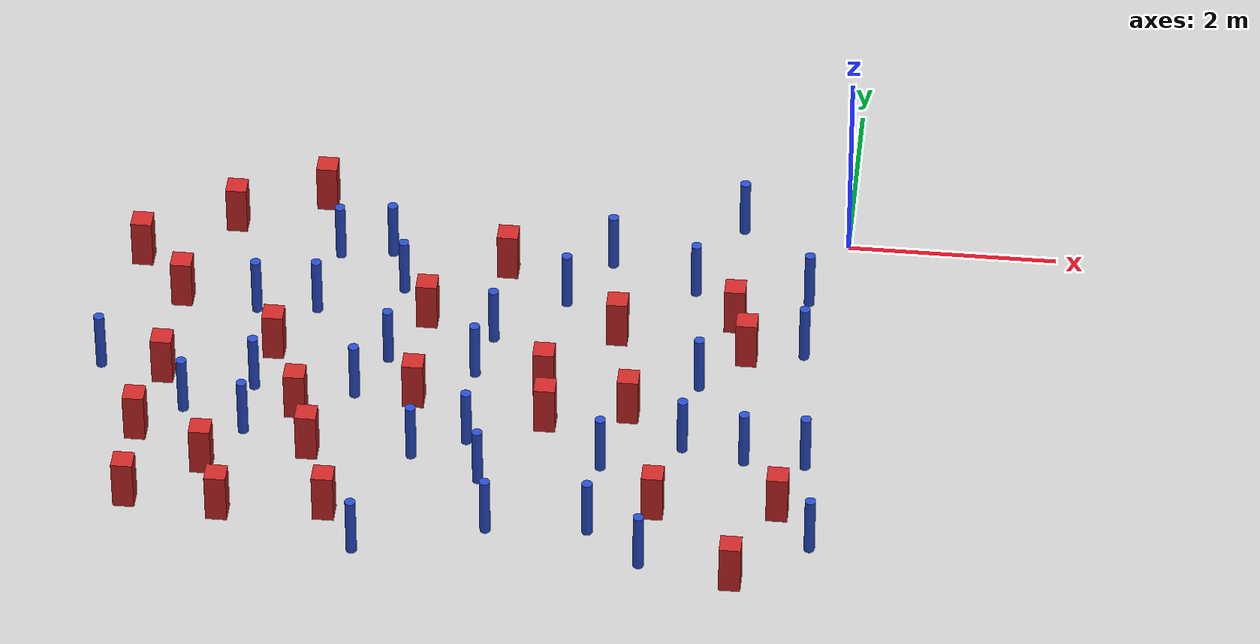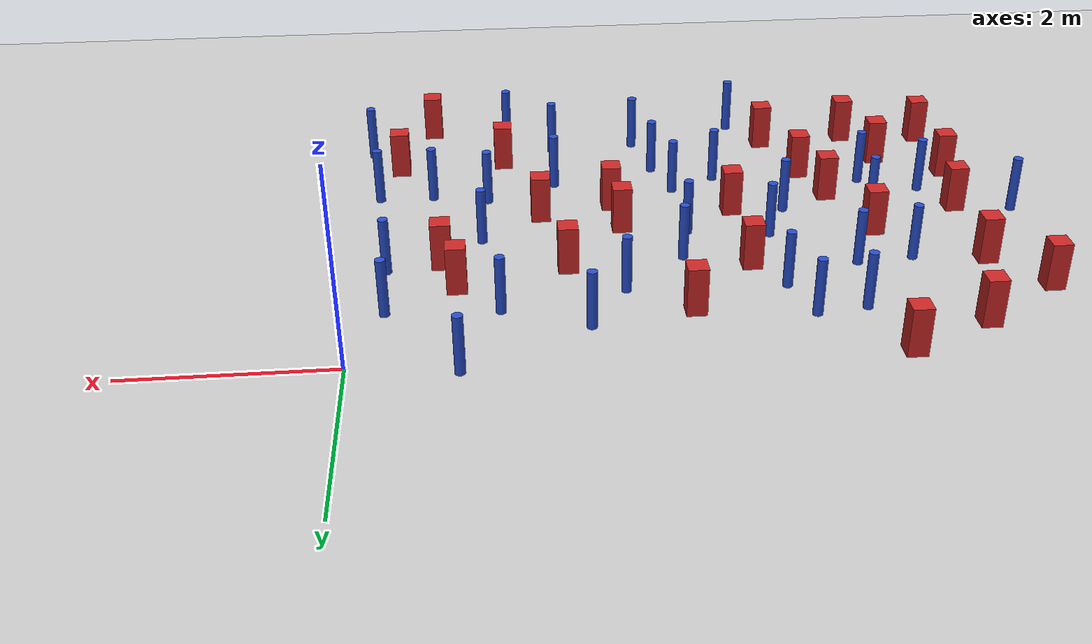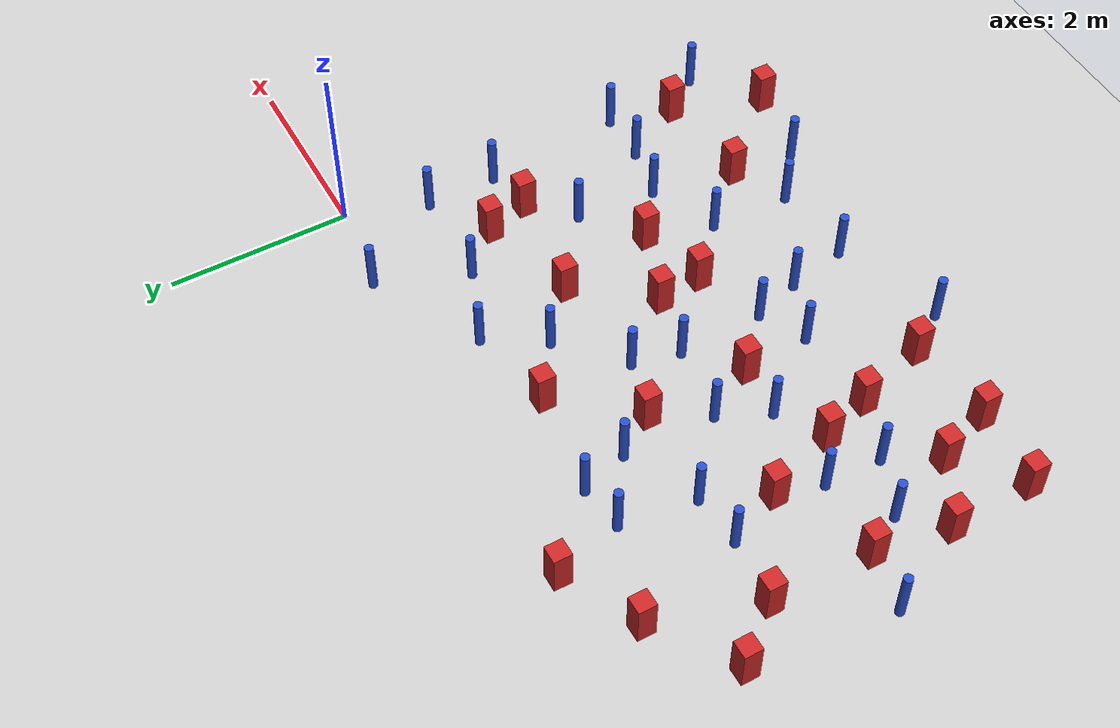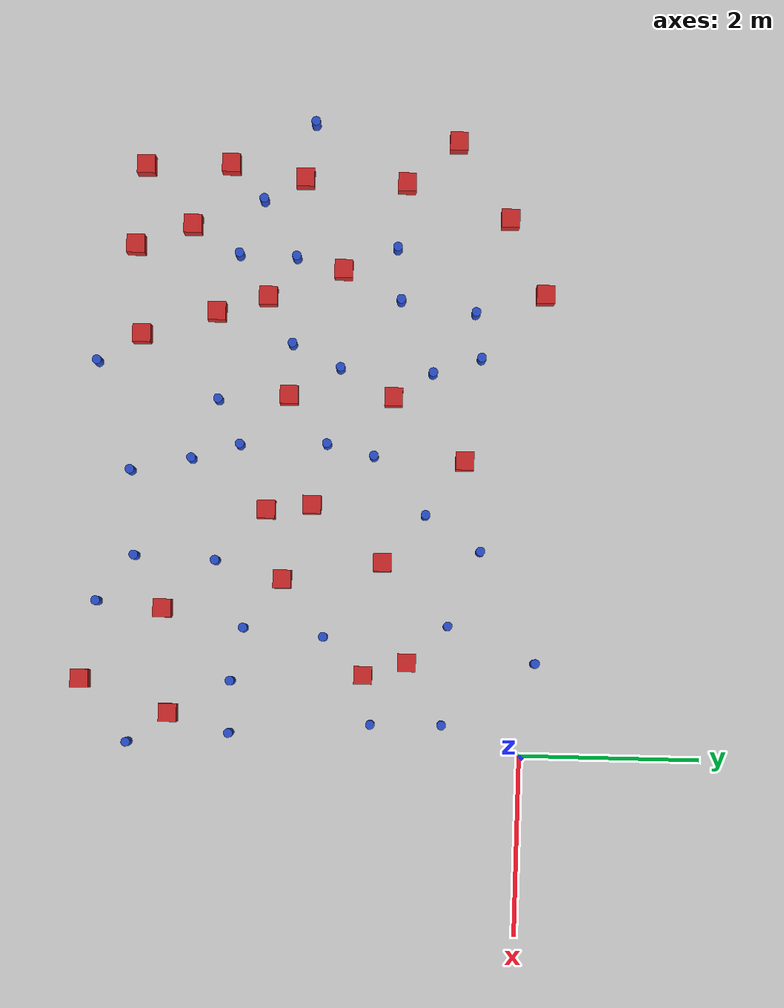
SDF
<sdf version="1.6">
 <world name="default">
  <model name="ground_plane">
   <static>1</static>
   <link name="link">
    <collision name="collision">
     <geometry><plane><normal>0 0 1</normal><size>100 100</size></plane></geometry>
     <surface><friction><ode><mu>100</mu><mu2>50</mu2></ode></friction></surface>
    </collision>
    <visual name="visual">
     <cast_shadows>0</cast_shadows>
     <geometry><plane><normal>0 0 1</normal><size>100 100</size></plane></geometry>
     <material>
      <ambient>1.0 1.0 1.0 1.0</ambient>
      <diffuse>0.8 0.8 0.8 1.0</diffuse>
      <specular>0.01 0.01 0.01 1.000000</specular>
     </material>
    </visual>
   </link>
  </model>
  <model name="square_post_obstacle1">
   <static>true</static>
   <pose>-5.09552798012 0.169614050784 8.22691968438e-08 7.2212513382e-06 -7.54495500217e-07 2.29674213826e-05</pose>
   <link name="link">
    <pose>0 0 0.25 0 -0 0</pose>
    <inertial>
     <mass>100</mass>
     <inertia>
      <ixx>0.166667</ixx>
      <ixy>0</ixy>
      <ixz>0</ixz>
      <iyy>0.166667</iyy>
      <iyz>0</iyz>
      <izz>0.166667</izz>
     </inertia>
    </inertial>
    <collision name="collision"><geometry><box><size>.2 .2 .5</size></box></geometry></collision>
    <visual name="visual">
     <geometry><box><size>.2 .2 .5</size></box></geometry>
     <material>
      <script><name>Gazebo/Red</name><uri>file://media/materials/scripts/gazebo.material</uri></script>
     </material>
    </visual>
   </link>
  </model>
  <model name="square_post_obstacle5">
   <static>true</static>
   <pose>-0.739914075484 -4.86374876013 8.22691968438e-08 7.2212513382e-06 -7.54495500217e-07 2.29674213826e-05</pose>
   <link name="link">
    <pose>0 0 0.25 0 -0 0</pose>
    <inertial>
     <mass>100</mass>
     <inertia>
      <ixx>0.166667</ixx>
      <ixy>0</ixy>
      <ixz>0</ixz>
      <iyy>0.166667</iyy>
      <iyz>0</iyz>
      <izz>0.166667</izz>
     </inertia>
    </inertial>
    <collision name="collision"><geometry><box><size>.2 .2 .5</size></box></geometry></collision>
    <visual name="visual">
     <geometry><box><size>.2 .2 .5</size></box></geometry>
     <material>
      <script><name>Gazebo/Red</name><uri>file://media/materials/scripts/gazebo.material</uri></script>
     </material>
    </visual>
   </link>
  </model>
  <model name="square_post_obstacle14">
   <static>true</static>
   <pose>-2.71619464707 -2.35196584994 8.22691968438e-08 7.2212513382e-06 -7.54495500217e-07 2.29674213826e-05</pose>
   <link name="link">
    <pose>0 0 0.25 0 -0 0</pose>
    <inertial>
     <mass>100</mass>
     <inertia>
      <ixx>0.166667</ixx>
      <ixy>0</ixy>
      <ixz>0</ixz>
      <iyy>0.166667</iyy>
      <iyz>0</iyz>
      <izz>0.166667</izz>
     </inertia>
    </inertial>
    <collision name="collision"><geometry><box><size>.2 .2 .5</size></box></geometry></collision>
    <visual name="visual">
     <geometry><box><size>.2 .2 .5</size></box></geometry>
     <material>
      <script><name>Gazebo/Red</name><uri>file://media/materials/scripts/gazebo.material</uri></script>
     </material>
    </visual>
   </link>
  </model>
  <model name="pole_obstacle10">
   <static>true</static>
   <pose>-1.26184989518 -2.19216682164 2.88873142074e-08 -9.90536689791e-09 4.6021994899e-07 -1.20965994959e-07</pose>
   <link name="link">
    <pose>0 0 0.3 0 -0 0</pose>
    <inertial>
     <mass>1</mass>
     <inertia><ixx>0.145833</ixx><ixy>0</ixy><ixz>0</ixz><iyy>0.145833</iyy><iyz>0</iyz><izz>0.125</izz></inertia>
    </inertial>
    <collision name="collision">
     <geometry><cylinder><radius>0.05</radius><length>.6</length></cylinder></geometry>
    </collision>
    <visual name="visual">
     <geometry><cylinder><radius>0.05</radius><length>.6</length></cylinder></geometry>
     <material>
      <script><name>Gazebo/Blue</name><uri>file://media/materials/scripts/gazebo.material</uri></script>
     </material>
    </visual>
   </link>
  </model>
  <model name="square_post_obstacle21">
   <static>true</static>
   <pose>-4.8261092977 -3.45431383046 8.22691968438e-08 7.2212513382e-06 -7.54495500217e-07 2.29674213826e-05</pose>
   <link name="link">
    <pose>0 0 0.25 0 -0 0</pose>
    <inertial>
     <mass>100</mass>
     <inertia>
      <ixx>0.166667</ixx>
      <ixy>0</ixy>
      <ixz>0</ixz>
      <iyy>0.166667</iyy>
      <iyz>0</iyz>
      <izz>0.166667</izz>
     </inertia>
    </inertial>
    <collision name="collision"><geometry><box><size>.2 .2 .5</size></box></geometry></collision>
    <visual name="visual">
     <geometry><box><size>.2 .2 .5</size></box></geometry>
     <material>
      <script><name>Gazebo/Red</name><uri>file://media/materials/scripts/gazebo.material</uri></script>
     </material>
    </visual>
   </link>
  </model>
  <model name="pole_obstacle17">
   <static>true</static>
   <pose>-2.62959651649 -1.09778085469 2.88873142074e-08 -9.90536689395e-09 4.60219949e-07 -1.20965994953e-07</pose>
   <link name="link">
    <pose>0 0 0.3 0 -0 0</pose>
    <inertial>
     <mass>1</mass>
     <inertia><ixx>0.145833</ixx><ixy>0</ixy><ixz>0</ixz><iyy>0.145833</iyy><iyz>0</iyz><izz>0.125</izz></inertia>
    </inertial>
    <collision name="collision">
     <geometry><cylinder><radius>0.05</radius><length>.6</length></cylinder></geometry>
    </collision>
    <visual name="visual">
     <geometry><cylinder><radius>0.05</radius><length>.6</length></cylinder></geometry>
     <material>
      <script><name>Gazebo/Blue</name><uri>file://media/materials/scripts/gazebo.material</uri></script>
     </material>
    </visual>
   </link>
  </model>
  <model name="square_post_obstacle26">
   <static>true</static>
   <pose>-4.56124194803 -4.27651367608 8.22691968438e-08 7.2212513382e-06 -7.54495500217e-07 2.29674213826e-05</pose>
   <link name="link">
    <pose>0 0 0.25 0 -0 0</pose>
    <inertial>
     <mass>100</mass>
     <inertia>
      <ixx>0.166667</ixx>
      <ixy>0</ixy>
      <ixz>0</ixz>
      <iyy>0.166667</iyy>
      <iyz>0</iyz>
      <izz>0.166667</izz>
     </inertia>
    </inertial>
    <collision name="collision"><geometry><box><size>.2 .2 .5</size></box></geometry></collision>
    <visual name="visual">
     <geometry><box><size>.2 .2 .5</size></box></geometry>
     <material>
      <script><name>Gazebo/Red</name><uri>file://media/materials/scripts/gazebo.material</uri></script>
     </material>
    </visual>
   </link>
  </model>
  <model name="square_post_obstacle27">
   <static>true</static>
   <pose>-5.32435496994 -2.06732113186 8.22691968438e-08 7.2212513382e-06 -7.54495500217e-07 2.29674213826e-05</pose>
   <link name="link">
    <pose>0 0 0.25 0 -0 0</pose>
    <inertial>
     <mass>100</mass>
     <inertia>
      <ixx>0.166667</ixx>
      <ixy>0</ixy>
      <ixz>0</ixz>
      <iyy>0.166667</iyy>
      <iyz>0</iyz>
      <izz>0.166667</izz>
     </inertia>
    </inertial>
    <collision name="collision"><geometry><box><size>.2 .2 .5</size></box></geometry></collision>
    <visual name="visual">
     <geometry><box><size>.2 .2 .5</size></box></geometry>
     <material>
      <script><name>Gazebo/Red</name><uri>file://media/materials/scripts/gazebo.material</uri></script>
     </material>
    </visual>
   </link>
  </model>
  <model name="square_post_obstacle33">
   <static>true</static>
   <pose>-5.00915330419 -2.89200436723 8.22691968438e-08 7.2212513382e-06 -7.54495500217e-07 2.29674213826e-05</pose>
   <link name="link">
    <pose>0 0 0.25 0 -0 0</pose>
    <inertial>
     <mass>100</mass>
     <inertia>
      <ixx>0.166667</ixx>
      <ixy>0</ixy>
      <ixz>0</ixz>
      <iyy>0.166667</iyy>
      <iyz>0</iyz>
      <izz>0.166667</izz>
     </inertia>
    </inertial>
    <collision name="collision"><geometry><box><size>.2 .2 .5</size></box></geometry></collision>
    <visual name="visual">
     <geometry><box><size>.2 .2 .5</size></box></geometry>
     <material>
      <script><name>Gazebo/Red</name><uri>file://media/materials/scripts/gazebo.material</uri></script>
     </material>
    </visual>
   </link>
  </model>
  <model name="square_post_obstacle43">
   <static>true</static>
   <pose>-3.23792067343 -0.678692630526 8.22691968438e-08 7.2212513382e-06 -7.54495500217e-07 2.29674213826e-05</pose>
   <link name="link">
    <pose>0 0 0.25 0 -0 0</pose>
    <inertial>
     <mass>100</mass>
     <inertia>
      <ixx>0.166667</ixx>
      <ixy>0</ixy>
      <ixz>0</ixz>
      <iyy>0.166667</iyy>
      <iyz>0</iyz>
      <izz>0.166667</izz>
     </inertia>
    </inertial>
    <collision name="collision"><geometry><box><size>.2 .2 .5</size></box></geometry></collision>
    <visual name="visual">
     <geometry><box><size>.2 .2 .5</size></box></geometry>
     <material>
      <script><name>Gazebo/Red</name><uri>file://media/materials/scripts/gazebo.material</uri></script>
     </material>
    </visual>
   </link>
  </model>
  <model name="square_post_obstacle45">
   <static>true</static>
   <pose>-6.42636664335 -4.27368745929 8.22691968438e-08 7.22125133819e-06 -7.54495500217e-07 2.29674213826e-05</pose>
   <link name="link">
    <pose>0 0 0.25 0 -0 0</pose>
    <inertial>
     <mass>100</mass>
     <inertia>
      <ixx>0.166667</ixx>
      <ixy>0</ixy>
      <ixz>0</ixz>
      <iyy>0.166667</iyy>
      <iyz>0</iyz>
      <izz>0.166667</izz>
     </inertia>
    </inertial>
    <collision name="collision"><geometry><box><size>.2 .2 .5</size></box></geometry></collision>
    <visual name="visual">
     <geometry><box><size>.2 .2 .5</size></box></geometry>
     <material>
      <script><name>Gazebo/Red</name><uri>file://media/materials/scripts/gazebo.material</uri></script>
     </material>
    </visual>
   </link>
  </model>
  <model name="square_post_obstacle48">
   <static>true</static>
   <pose>-1.88824573846 -2.66054621003 8.22691968438e-08 7.2212513382e-06 -7.54495500217e-07 2.29674213826e-05</pose>
   <link name="link">
    <pose>0 0 0.25 0 -0 0</pose>
    <inertial>
     <mass>100</mass>
     <inertia>
      <ixx>0.166667</ixx>
      <ixy>0</ixy>
      <ixz>0</ixz>
      <iyy>0.166667</iyy>
      <iyz>0</iyz>
      <izz>0.166667</izz>
     </inertia>
    </inertial>
    <collision name="collision"><geometry><box><size>.2 .2 .5</size></box></geometry></collision>
    <visual name="visual">
     <geometry><box><size>.2 .2 .5</size></box></geometry>
     <material>
      <script><name>Gazebo/Red</name><uri>file://media/materials/scripts/gazebo.material</uri></script>
     </material>
    </visual>
   </link>
  </model>
  <model name="square_post_obstacle52">
   <static>true</static>
   <pose>-5.5453873152 -4.36742993453 8.22691968438e-08 7.22125133819e-06 -7.54495500217e-07 2.29674213826e-05</pose>
   <link name="link">
    <pose>0 0 0.25 0 -0 0</pose>
    <inertial>
     <mass>100</mass>
     <inertia>
      <ixx>0.166667</ixx>
      <ixy>0</ixy>
      <ixz>0</ixz>
      <iyy>0.166667</iyy>
      <iyz>0</iyz>
      <izz>0.166667</izz>
     </inertia>
    </inertial>
    <collision name="collision"><geometry><box><size>.2 .2 .5</size></box></geometry></collision>
    <visual name="visual">
     <geometry><box><size>.2 .2 .5</size></box></geometry>
     <material>
      <script><name>Gazebo/Red</name><uri>file://media/materials/scripts/gazebo.material</uri></script>
     </material>
    </visual>
   </link>
  </model>
  <model name="pole_obstacle52">
   <static>true</static>
   <pose>-6.07132431336 -2.9605820387 2.88873142074e-08 -9.90536690245e-09 4.6021994898e-07 -1.20965994966e-07</pose>
   <link name="link">
    <pose>0 0 0.3 0 -0 0</pose>
    <inertial>
     <mass>1</mass>
     <inertia><ixx>0.145833</ixx><ixy>0</ixy><ixz>0</ixz><iyy>0.145833</iyy><iyz>0</iyz><izz>0.125</izz></inertia>
    </inertial>
    <collision name="collision">
     <geometry><cylinder><radius>0.05</radius><length>.6</length></cylinder></geometry>
    </collision>
    <visual name="visual">
     <geometry><cylinder><radius>0.05</radius><length>.6</length></cylinder></geometry>
     <material>
      <script><name>Gazebo/Blue</name><uri>file://media/materials/scripts/gazebo.material</uri></script>
     </material>
    </visual>
   </link>
  </model>
  <model name="pole_obstacle60">
   <static>true</static>
   <pose>-1.41136649371 -0.82225430417 2.88873142074e-08 -9.90536689692e-09 4.60219948993e-07 -1.20965994958e-07</pose>
   <link name="link">
    <pose>0 0 0.3 0 -0 0</pose>
    <inertial>
     <mass>1</mass>
     <inertia><ixx>0.145833</ixx><ixy>0</ixy><ixz>0</ixz><iyy>0.145833</iyy><iyz>0</iyz><izz>0.125</izz></inertia>
    </inertial>
    <collision name="collision">
     <geometry><cylinder><radius>0.05</radius><length>.6</length></cylinder></geometry>
    </collision>
    <visual name="visual">
     <geometry><cylinder><radius>0.05</radius><length>.6</length></cylinder></geometry>
     <material>
      <script><name>Gazebo/Blue</name><uri>file://media/materials/scripts/gazebo.material</uri></script>
     </material>
    </visual>
   </link>
  </model>
  <model name="pole_obstacle66">
   <static>true</static>
   <pose>-4.24623921269 -4.75539590558 2.88873142074e-08 -9.90536690842e-09 4.60219948965e-07 -1.20965994976e-07</pose>
   <link name="link">
    <pose>0 0 0.3 0 -0 0</pose>
    <inertial>
     <mass>1</mass>
     <inertia><ixx>0.145833</ixx><ixy>0</ixy><ixz>0</ixz><iyy>0.145833</iyy><iyz>0</iyz><izz>0.125</izz></inertia>
    </inertial>
    <collision name="collision">
     <geometry><cylinder><radius>0.05</radius><length>.6</length></cylinder></geometry>
    </collision>
    <visual name="visual">
     <geometry><cylinder><radius>0.05</radius><length>.6</length></cylinder></geometry>
     <material>
      <script><name>Gazebo/Blue</name><uri>file://media/materials/scripts/gazebo.material</uri></script>
     </material>
    </visual>
   </link>
  </model>
  <model name="square_post_obstacle70">
   <static>true</static>
   <pose>-6.29868401032 -1.38949057265 8.22691968438e-08 7.2212513382e-06 -7.54495500217e-07 2.29674213826e-05</pose>
   <link name="link">
    <pose>0 0 0.25 0 -0 0</pose>
    <inertial>
     <mass>100</mass>
     <inertia>
      <ixx>0.166667</ixx>
      <ixy>0</ixy>
      <ixz>0</ixz>
      <iyy>0.166667</iyy>
      <iyz>0</iyz>
      <izz>0.166667</izz>
     </inertia>
    </inertial>
    <collision name="collision"><geometry><box><size>.2 .2 .5</size></box></geometry></collision>
    <visual name="visual">
     <geometry><box><size>.2 .2 .5</size></box></geometry>
     <material>
      <script><name>Gazebo/Red</name><uri>file://media/materials/scripts/gazebo.material</uri></script>
     </material>
    </visual>
   </link>
  </model>
  <model name="pole_obstacle67">
   <static>true</static>
   <pose>-3.26856803913 -1.68205100615 2.88873142074e-08 -9.90536689395e-09 4.60219949e-07 -1.20965994953e-07</pose>
   <link name="link">
    <pose>0 0 0.3 0 -0 0</pose>
    <inertial>
     <mass>1</mass>
     <inertia><ixx>0.145833</ixx><ixy>0</ixy><ixz>0</ixz><iyy>0.145833</iyy><iyz>0</iyz><izz>0.125</izz></inertia>
    </inertial>
    <collision name="collision">
     <geometry><cylinder><radius>0.05</radius><length>.6</length></cylinder></geometry>
    </collision>
    <visual name="visual">
     <geometry><cylinder><radius>0.05</radius><length>.6</length></cylinder></geometry>
     <material>
      <script><name>Gazebo/Blue</name><uri>file://media/materials/scripts/gazebo.material</uri></script>
     </material>
    </visual>
   </link>
  </model>
  <model name="pole_obstacle83">
   <static>true</static>
   <pose>-1.02284198662 0.147478601178 2.88873142074e-08 -9.90536690066e-09 4.60219948984e-07 -1.20965994963e-07</pose>
   <link name="link">
    <pose>0 0 0.3 0 -0 0</pose>
    <inertial>
     <mass>1</mass>
     <inertia><ixx>0.145833</ixx><ixy>0</ixy><ixz>0</ixz><iyy>0.145833</iyy><iyz>0</iyz><izz>0.125</izz></inertia>
    </inertial>
    <collision name="collision">
     <geometry><cylinder><radius>0.05</radius><length>.6</length></cylinder></geometry>
    </collision>
    <visual name="visual">
     <geometry><cylinder><radius>0.05</radius><length>.6</length></cylinder></geometry>
     <material>
      <script><name>Gazebo/Blue</name><uri>file://media/materials/scripts/gazebo.material</uri></script>
     </material>
    </visual>
   </link>
  </model>
  <model name="square_post_obstacle80">
   <static>true</static>
   <pose>-3.92179624631 -2.63487576427 8.22691968438e-08 7.2212513382e-06 -7.54495500217e-07 2.29674213826e-05</pose>
   <link name="link">
    <pose>0 0 0.25 0 -0 0</pose>
    <inertial>
     <mass>100</mass>
     <inertia>
      <ixx>0.166667</ixx>
      <ixy>0</ixy>
      <ixz>0</ixz>
      <iyy>0.166667</iyy>
      <iyz>0</iyz>
      <izz>0.166667</izz>
     </inertia>
    </inertial>
    <collision name="collision"><geometry><box><size>.2 .2 .5</size></box></geometry></collision>
    <visual name="visual">
     <geometry><box><size>.2 .2 .5</size></box></geometry>
     <material>
      <script><name>Gazebo/Red</name><uri>file://media/materials/scripts/gazebo.material</uri></script>
     </material>
    </visual>
   </link>
  </model>
  <model name="pole_obstacle89">
   <static>true</static>
   <pose>-5.46524443694 -3.21765596789 2.88873142074e-08 -9.90536690245e-09 4.6021994898e-07 -1.20965994966e-07</pose>
   <link name="link">
    <pose>0 0 0.3 0 -0 0</pose>
    <inertial>
     <mass>1</mass>
     <inertia><ixx>0.145833</ixx><ixy>0</ixy><ixz>0</ixz><iyy>0.145833</iyy><iyz>0</iyz><izz>0.125</izz></inertia>
    </inertial>
    <collision name="collision">
     <geometry><cylinder><radius>0.05</radius><length>.6</length></cylinder></geometry>
    </collision>
    <visual name="visual">
     <geometry><cylinder><radius>0.05</radius><length>.6</length></cylinder></geometry>
     <material>
      <script><name>Gazebo/Blue</name><uri>file://media/materials/scripts/gazebo.material</uri></script>
     </material>
    </visual>
   </link>
  </model>
  <model name="pole_obstacle90">
   <static>true</static>
   <pose>-1.59982268177 -4.70130562136 2.88873142074e-08 -9.90536689852e-09 4.60219948989e-07 -1.2096599496e-07</pose>
   <link name="link">
    <pose>0 0 0.3 0 -0 0</pose>
    <inertial>
     <mass>1</mass>
     <inertia><ixx>0.145833</ixx><ixy>0</ixy><ixz>0</ixz><iyy>0.145833</iyy><iyz>0</iyz><izz>0.125</izz></inertia>
    </inertial>
    <collision name="collision">
     <geometry><cylinder><radius>0.05</radius><length>.6</length></cylinder></geometry>
    </collision>
    <visual name="visual">
     <geometry><cylinder><radius>0.05</radius><length>.6</length></cylinder></geometry>
     <material>
      <script><name>Gazebo/Blue</name><uri>file://media/materials/scripts/gazebo.material</uri></script>
     </material>
    </visual>
   </link>
  </model>
  <model name="pole_obstacle94">
   <static>true</static>
   <pose>-0.31929968398 -0.864983389127 2.88873142074e-08 -9.9053668986e-09 4.60219948989e-07 -1.20965994961e-07</pose>
   <link name="link">
    <pose>0 0 0.3 0 -0 0</pose>
    <inertial>
     <mass>1</mass>
     <inertia><ixx>0.145833</ixx><ixy>0</ixy><ixz>0</ixz><iyy>0.145833</iyy><iyz>0</iyz><izz>0.125</izz></inertia>
    </inertial>
    <collision name="collision">
     <geometry><cylinder><radius>0.05</radius><length>.6</length></cylinder></geometry>
    </collision>
    <visual name="visual">
     <geometry><cylinder><radius>0.05</radius><length>.6</length></cylinder></geometry>
     <material>
      <script><name>Gazebo/Blue</name><uri>file://media/materials/scripts/gazebo.material</uri></script>
     </material>
    </visual>
   </link>
  </model>
  <model name="pole_obstacle98">
   <static>true</static>
   <pose>-0.054227129962 -4.32937963711 2.88873142074e-08 -9.90536689643e-09 4.60219948994e-07 -1.20965994959e-07</pose>
   <link name="link">
    <pose>0 0 0.3 0 -0 0</pose>
    <inertial>
     <mass>1</mass>
     <inertia><ixx>0.145833</ixx><ixy>0</ixy><ixz>0</ixz><iyy>0.145833</iyy><iyz>0</iyz><izz>0.125</izz></inertia>
    </inertial>
    <collision name="collision">
     <geometry><cylinder><radius>0.05</radius><length>.6</length></cylinder></geometry>
    </collision>
    <visual name="visual">
     <geometry><cylinder><radius>0.05</radius><length>.6</length></cylinder></geometry>
     <material>
      <script><name>Gazebo/Blue</name><uri>file://media/materials/scripts/gazebo.material</uri></script>
     </material>
    </visual>
   </link>
  </model>
  <model name="pole_obstacle100">
   <static>true</static>
   <pose>-5.44607217531 -2.58604061961 2.88873142074e-08 -9.90536690245e-09 4.6021994898e-07 -1.20965994966e-07</pose>
   <link name="link">
    <pose>0 0 0.3 0 -0 0</pose>
    <inertial>
     <mass>1</mass>
     <inertia><ixx>0.145833</ixx><ixy>0</ixy><ixz>0</ixz><iyy>0.145833</iyy><iyz>0</iyz><izz>0.125</izz></inertia>
    </inertial>
    <collision name="collision">
     <geometry><cylinder><radius>0.05</radius><length>.6</length></cylinder></geometry>
    </collision>
    <visual name="visual">
     <geometry><cylinder><radius>0.05</radius><length>.6</length></cylinder></geometry>
     <material>
      <script><name>Gazebo/Blue</name><uri>file://media/materials/scripts/gazebo.material</uri></script>
     </material>
    </visual>
   </link>
  </model>
  <model name="pole_obstacle103">
   <static>true</static>
   <pose>-2.24134219872 -0.483412115875 2.88873142074e-08 -9.90536689634e-09 4.60219948994e-07 -1.20965994958e-07</pose>
   <link name="link">
    <pose>0 0 0.3 0 -0 0</pose>
    <inertial>
     <mass>1</mass>
     <inertia><ixx>0.145833</ixx><ixy>0</ixy><ixz>0</ixz><iyy>0.145833</iyy><iyz>0</iyz><izz>0.125</izz></inertia>
    </inertial>
    <collision name="collision">
     <geometry><cylinder><radius>0.05</radius><length>.6</length></cylinder></geometry>
    </collision>
    <visual name="visual">
     <geometry><cylinder><radius>0.05</radius><length>.6</length></cylinder></geometry>
     <material>
      <script><name>Gazebo/Blue</name><uri>file://media/materials/scripts/gazebo.material</uri></script>
     </material>
    </visual>
   </link>
  </model>
  <model name="square_post_obstacle92">
   <static>true</static>
   <pose>-6.76389287697 -0.828064706013 8.22691968438e-08 7.2212513382e-06 -7.54495500217e-07 2.29674213826e-05</pose>
   <link name="link">
    <pose>0 0 0.25 0 -0 0</pose>
    <inertial>
     <mass>100</mass>
     <inertia>
      <ixx>0.166667</ixx>
      <ixy>0</ixy>
      <ixz>0</ixz>
      <iyy>0.166667</iyy>
      <iyz>0</iyz>
      <izz>0.166667</izz>
     </inertia>
    </inertial>
    <collision name="collision"><geometry><box><size>.2 .2 .5</size></box></geometry></collision>
    <visual name="visual">
     <geometry><box><size>.2 .2 .5</size></box></geometry>
     <material>
      <script><name>Gazebo/Red</name><uri>file://media/materials/scripts/gazebo.material</uri></script>
     </material>
    </visual>
   </link>
  </model>
  <model name="pole_obstacle106">
   <static>true</static>
   <pose>-0.308182992315 -1.65066243594 2.88873142074e-08 -9.90536689905e-09 4.60219948988e-07 -1.2096599496e-07</pose>
   <link name="link">
    <pose>0 0 0.3 0 -0 0</pose>
    <inertial>
     <mass>1</mass>
     <inertia><ixx>0.145833</ixx><ixy>0</ixy><ixz>0</ixz><iyy>0.145833</iyy><iyz>0</iyz><izz>0.125</izz></inertia>
    </inertial>
    <collision name="collision">
     <geometry><cylinder><radius>0.05</radius><length>.6</length></cylinder></geometry>
    </collision>
    <visual name="visual">
     <geometry><cylinder><radius>0.05</radius><length>.6</length></cylinder></geometry>
     <material>
      <script><name>Gazebo/Blue</name><uri>file://media/materials/scripts/gazebo.material</uri></script>
     </material>
    </visual>
   </link>
  </model>
  <model name="pole_obstacle108">
   <static>true</static>
   <pose>-1.34148762088 -3.0747473308 2.88873142074e-08 -9.90536689791e-09 4.6021994899e-07 -1.20965994959e-07</pose>
   <link name="link">
    <pose>0 0 0.3 0 -0 0</pose>
    <inertial>
     <mass>1</mass>
     <inertia><ixx>0.145833</ixx><ixy>0</ixy><ixz>0</ixz><iyy>0.145833</iyy><iyz>0</iyz><izz>0.125</izz></inertia>
    </inertial>
    <collision name="collision">
     <geometry><cylinder><radius>0.05</radius><length>.6</length></cylinder></geometry>
    </collision>
    <visual name="visual">
     <geometry><cylinder><radius>0.05</radius><length>.6</length></cylinder></geometry>
     <material>
      <script><name>Gazebo/Blue</name><uri>file://media/materials/scripts/gazebo.material</uri></script>
     </material>
    </visual>
   </link>
  </model>
  <model name="pole_obstacle113">
   <static>true</static>
   <pose>-2.1121800204 -4.29640870755 2.88873142074e-08 -9.90536689859e-09 4.60219948989e-07 -1.20965994961e-07</pose>
   <link name="link">
    <pose>0 0 0.3 0 -0 0</pose>
    <inertial>
     <mass>1</mass>
     <inertia><ixx>0.145833</ixx><ixy>0</ixy><ixz>0</ixz><iyy>0.145833</iyy><iyz>0</iyz><izz>0.125</izz></inertia>
    </inertial>
    <collision name="collision">
     <geometry><cylinder><radius>0.05</radius><length>.6</length></cylinder></geometry>
    </collision>
    <visual name="visual">
     <geometry><cylinder><radius>0.05</radius><length>.6</length></cylinder></geometry>
     <material>
      <script><name>Gazebo/Blue</name><uri>file://media/materials/scripts/gazebo.material</uri></script>
     </material>
    </visual>
   </link>
  </model>
  <model name="pole_obstacle123">
   <static>true</static>
   <pose>-3.36225570476 -3.1603658374 2.88873142074e-08 -9.90536689597e-09 4.60219948995e-07 -1.20965994957e-07</pose>
   <link name="link">
    <pose>0 0 0.3 0 -0 0</pose>
    <inertial>
     <mass>1</mass>
     <inertia><ixx>0.145833</ixx><ixy>0</ixy><ixz>0</ixz><iyy>0.145833</iyy><iyz>0</iyz><izz>0.125</izz></inertia>
    </inertial>
    <collision name="collision">
     <geometry><cylinder><radius>0.05</radius><length>.6</length></cylinder></geometry>
    </collision>
    <visual name="visual">
     <geometry><cylinder><radius>0.05</radius><length>.6</length></cylinder></geometry>
     <material>
      <script><name>Gazebo/Blue</name><uri>file://media/materials/scripts/gazebo.material</uri></script>
     </material>
    </visual>
   </link>
  </model>
  <model name="square_post_obstacle113">
   <static>true</static>
   <pose>-2.65257638541 -2.85558380221 8.22691968438e-08 7.2212513382e-06 -7.54495500217e-07 2.29674213826e-05</pose>
   <link name="link">
    <pose>0 0 0.25 0 -0 0</pose>
    <inertial>
     <mass>100</mass>
     <inertia>
      <ixx>0.166667</ixx>
      <ixy>0</ixy>
      <ixz>0</ixz>
      <iyy>0.166667</iyy>
      <iyz>0</iyz>
      <izz>0.166667</izz>
     </inertia>
    </inertial>
    <collision name="collision"><geometry><box><size>.2 .2 .5</size></box></geometry></collision>
    <visual name="visual">
     <geometry><box><size>.2 .2 .5</size></box></geometry>
     <material>
      <script><name>Gazebo/Red</name><uri>file://media/materials/scripts/gazebo.material</uri></script>
     </material>
    </visual>
   </link>
  </model>
  <model name="pole_obstacle128">
   <static>true</static>
   <pose>-0.753222919731 -3.20284934547 2.88873142074e-08 -9.90536689636e-09 4.60219948994e-07 -1.20965994958e-07</pose>
   <link name="link">
    <pose>0 0 0.3 0 -0 0</pose>
    <inertial>
     <mass>1</mass>
     <inertia><ixx>0.145833</ixx><ixy>0</ixy><ixz>0</ixz><iyy>0.145833</iyy><iyz>0</iyz><izz>0.125</izz></inertia>
    </inertial>
    <collision name="collision">
     <geometry><cylinder><radius>0.05</radius><length>.6</length></cylinder></geometry>
    </collision>
    <visual name="visual">
     <geometry><cylinder><radius>0.05</radius><length>.6</length></cylinder></geometry>
     <material>
      <script><name>Gazebo/Blue</name><uri>file://media/materials/scripts/gazebo.material</uri></script>
     </material>
    </visual>
   </link>
  </model>
  <model name="pole_obstacle138">
   <static>true</static>
   <pose>-4.99721137595 -1.4229853439 2.88873142074e-08 -9.90536689445e-09 4.60219948999e-07 -1.20965994956e-07</pose>
   <link name="link">
    <pose>0 0 0.3 0 -0 0</pose>
    <inertial>
     <mass>1</mass>
     <inertia><ixx>0.145833</ixx><ixy>0</ixy><ixz>0</ixz><iyy>0.145833</iyy><iyz>0</iyz><izz>0.125</izz></inertia>
    </inertial>
    <collision name="collision">
     <geometry><cylinder><radius>0.05</radius><length>.6</length></cylinder></geometry>
    </collision>
    <visual name="visual">
     <geometry><cylinder><radius>0.05</radius><length>.6</length></cylinder></geometry>
     <material>
      <script><name>Gazebo/Blue</name><uri>file://media/materials/scripts/gazebo.material</uri></script>
     </material>
    </visual>
   </link>
  </model>
  <model name="square_post_obstacle131">
   <static>true</static>
   <pose>-2.09740026332 -1.56068505769 8.22691968438e-08 7.2212513382e-06 -7.54495500217e-07 2.29674213826e-05</pose>
   <link name="link">
    <pose>0 0 0.25 0 -0 0</pose>
    <inertial>
     <mass>100</mass>
     <inertia>
      <ixx>0.166667</ixx>
      <ixy>0</ixy>
      <ixz>0</ixz>
      <iyy>0.166667</iyy>
      <iyz>0</iyz>
      <izz>0.166667</izz>
     </inertia>
    </inertial>
    <collision name="collision"><geometry><box><size>.2 .2 .5</size></box></geometry></collision>
    <visual name="visual">
     <geometry><box><size>.2 .2 .5</size></box></geometry>
     <material>
      <script><name>Gazebo/Red</name><uri>file://media/materials/scripts/gazebo.material</uri></script>
     </material>
    </visual>
   </link>
  </model>
  <model name="pole_obstacle144">
   <static>true</static>
   <pose>-6.93372769513 -2.41151567338 2.88873142074e-08 -9.90536690245e-09 4.6021994898e-07 -1.20965994966e-07</pose>
   <link name="link">
    <pose>0 0 0.3 0 -0 0</pose>
    <inertial>
     <mass>1</mass>
     <inertia><ixx>0.145833</ixx><ixy>0</ixy><ixz>0</ixz><iyy>0.145833</iyy><iyz>0</iyz><izz>0.125</izz></inertia>
    </inertial>
    <collision name="collision">
     <geometry><cylinder><radius>0.05</radius><length>.6</length></cylinder></geometry>
    </collision>
    <visual name="visual">
     <geometry><cylinder><radius>0.05</radius><length>.6</length></cylinder></geometry>
     <material>
      <script><name>Gazebo/Blue</name><uri>file://media/materials/scripts/gazebo.material</uri></script>
     </material>
    </visual>
   </link>
  </model>
  <model name="pole_obstacle151">
   <static>true</static>
   <pose>-3.19756137742 -3.69093849884 2.88873142074e-08 -9.90536690232e-09 4.6021994898e-07 -1.20965994968e-07</pose>
   <link name="link">
    <pose>0 0 0.3 0 -0 0</pose>
    <inertial>
     <mass>1</mass>
     <inertia><ixx>0.145833</ixx><ixy>0</ixy><ixz>0</ixz><iyy>0.145833</iyy><iyz>0</iyz><izz>0.125</izz></inertia>
    </inertial>
    <collision name="collision">
     <geometry><cylinder><radius>0.05</radius><length>.6</length></cylinder></geometry>
    </collision>
    <visual name="visual">
     <geometry><cylinder><radius>0.05</radius><length>.6</length></cylinder></geometry>
     <material>
      <script><name>Gazebo/Blue</name><uri>file://media/materials/scripts/gazebo.material</uri></script>
     </material>
    </visual>
   </link>
  </model>
  <model name="pole_obstacle152">
   <static>true</static>
   <pose>-4.23265194698 -2.07323317554 2.88873142074e-08 -9.90536690245e-09 4.6021994898e-07 -1.20965994966e-07</pose>
   <link name="link">
    <pose>0 0 0.3 0 -0 0</pose>
    <inertial>
     <mass>1</mass>
     <inertia><ixx>0.145833</ixx><ixy>0</ixy><ixz>0</ixz><iyy>0.145833</iyy><iyz>0</iyz><izz>0.125</izz></inertia>
    </inertial>
    <collision name="collision">
     <geometry><cylinder><radius>0.05</radius><length>.6</length></cylinder></geometry>
    </collision>
    <visual name="visual">
     <geometry><cylinder><radius>0.05</radius><length>.6</length></cylinder></geometry>
     <material>
      <script><name>Gazebo/Blue</name><uri>file://media/materials/scripts/gazebo.material</uri></script>
     </material>
    </visual>
   </link>
  </model>
  <model name="pole_obstacle153">
   <static>true</static>
   <pose>-5.5722042315 -1.47515828243 2.88873142074e-08 -9.90536689445e-09 4.60219948999e-07 -1.20965994956e-07</pose>
   <link name="link">
    <pose>0 0 0.3 0 -0 0</pose>
    <inertial>
     <mass>1</mass>
     <inertia><ixx>0.145833</ixx><ixy>0</ixy><ixz>0</ixz><iyy>0.145833</iyy><iyz>0</iyz><izz>0.125</izz></inertia>
    </inertial>
    <collision name="collision">
     <geometry><cylinder><radius>0.05</radius><length>.6</length></cylinder></geometry>
    </collision>
    <visual name="visual">
     <geometry><cylinder><radius>0.05</radius><length>.6</length></cylinder></geometry>
     <material>
      <script><name>Gazebo/Blue</name><uri>file://media/materials/scripts/gazebo.material</uri></script>
     </material>
    </visual>
   </link>
  </model>
  <model name="square_post_obstacle142">
   <static>true</static>
   <pose>-0.385792050126 -3.88328477169 8.22691968438e-08 7.2212513382e-06 -7.54495500217e-07 2.29674213826e-05</pose>
   <link name="link">
    <pose>0 0 0.25 0 -0 0</pose>
    <inertial>
     <mass>100</mass>
     <inertia>
      <ixx>0.166667</ixx>
      <ixy>0</ixy>
      <ixz>0</ixz>
      <iyy>0.166667</iyy>
      <iyz>0</iyz>
      <izz>0.166667</izz>
     </inertia>
    </inertial>
    <collision name="collision"><geometry><box><size>.2 .2 .5</size></box></geometry></collision>
    <visual name="visual">
     <geometry><box><size>.2 .2 .5</size></box></geometry>
     <material>
      <script><name>Gazebo/Red</name><uri>file://media/materials/scripts/gazebo.material</uri></script>
     </material>
    </visual>
   </link>
  </model>
  <model name="square_post_obstacle159">
   <static>true</static>
   <pose>-0.999287767319 -1.26526508881 8.22691968438e-08 7.22125133819e-06 -7.54495500217e-07 2.29674213826e-05</pose>
   <link name="link">
    <pose>0 0 0.25 0 -0 0</pose>
    <inertial>
     <mass>100</mass>
     <inertia>
      <ixx>0.166667</ixx>
      <ixy>0</ixy>
      <ixz>0</ixz>
      <iyy>0.166667</iyy>
      <iyz>0</iyz>
      <izz>0.166667</izz>
     </inertia>
    </inertial>
    <collision name="collision"><geometry><box><size>.2 .2 .5</size></box></geometry></collision>
    <visual name="visual">
     <geometry><box><size>.2 .2 .5</size></box></geometry>
     <material>
      <script><name>Gazebo/Red</name><uri>file://media/materials/scripts/gazebo.material</uri></script>
     </material>
    </visual>
   </link>
  </model>
  <model name="pole_obstacle175">
   <static>true</static>
   <pose>-4.20082601661 -1.05117087105 2.88873142074e-08 -9.90536689445e-09 4.60219948999e-07 -1.20965994956e-07</pose>
   <link name="link">
    <pose>0 0 0.3 0 -0 0</pose>
    <inertial>
     <mass>1</mass>
     <inertia><ixx>0.145833</ixx><ixy>0</ixy><ixz>0</ixz><iyy>0.145833</iyy><iyz>0</iyz><izz>0.125</izz></inertia>
    </inertial>
    <collision name="collision">
     <geometry><cylinder><radius>0.05</radius><length>.6</length></cylinder></geometry>
    </collision>
    <visual name="visual">
     <geometry><cylinder><radius>0.05</radius><length>.6</length></cylinder></geometry>
     <material>
      <script><name>Gazebo/Blue</name><uri>file://media/materials/scripts/gazebo.material</uri></script>
     </material>
    </visual>
   </link>
  </model>
  <model name="pole_obstacle177">
   <static>true</static>
   <pose>-3.8546911659 -3.41135276589 2.88873142074e-08 -9.90536690232e-09 4.6021994898e-07 -1.20965994968e-07</pose>
   <link name="link">
    <pose>0 0 0.3 0 -0 0</pose>
    <inertial>
     <mass>1</mass>
     <inertia><ixx>0.145833</ixx><ixy>0</ixy><ixz>0</ixz><iyy>0.145833</iyy><iyz>0</iyz><izz>0.125</izz></inertia>
    </inertial>
    <collision name="collision">
     <geometry><cylinder><radius>0.05</radius><length>.6</length></cylinder></geometry>
    </collision>
    <visual name="visual">
     <geometry><cylinder><radius>0.05</radius><length>.6</length></cylinder></geometry>
     <material>
      <script><name>Gazebo/Blue</name><uri>file://media/materials/scripts/gazebo.material</uri></script>
     </material>
    </visual>
   </link>
  </model>
  <model name="square_post_obstacle175">
   <static>true</static>
   <pose>-6.3233949405 -2.5141340543 8.22691968438e-08 7.2212513382e-06 -7.54495500217e-07 2.29674213826e-05</pose>
   <link name="link">
    <pose>0 0 0.25 0 -0 0</pose>
    <inertial>
     <mass>100</mass>
     <inertia>
      <ixx>0.166667</ixx>
      <ixy>0</ixy>
      <ixz>0</ixz>
      <iyy>0.166667</iyy>
      <iyz>0</iyz>
      <izz>0.166667</izz>
     </inertia>
    </inertial>
    <collision name="collision"><geometry><box><size>.2 .2 .5</size></box></geometry></collision>
    <visual name="visual">
     <geometry><box><size>.2 .2 .5</size></box></geometry>
     <material>
      <script><name>Gazebo/Red</name><uri>file://media/materials/scripts/gazebo.material</uri></script>
     </material>
    </visual>
   </link>
  </model>
  <model name="square_post_obstacle185">
   <static>true</static>
   <pose>-3.92603852714 -1.48070496385 8.22691968438e-08 7.2212513382e-06 -7.54495500217e-07 2.29674213826e-05</pose>
   <link name="link">
    <pose>0 0 0.25 0 -0 0</pose>
    <inertial>
     <mass>100</mass>
     <inertia>
      <ixx>0.166667</ixx>
      <ixy>0</ixy>
      <ixz>0</ixz>
      <iyy>0.166667</iyy>
      <iyz>0</iyz>
      <izz>0.166667</izz>
     </inertia>
    </inertial>
    <collision name="collision"><geometry><box><size>.2 .2 .5</size></box></geometry></collision>
    <visual name="visual">
     <geometry><box><size>.2 .2 .5</size></box></geometry>
     <material>
      <script><name>Gazebo/Red</name><uri>file://media/materials/scripts/gazebo.material</uri></script>
     </material>
    </visual>
   </link>
  </model>
  <model name="square_post_obstacle190">
   <static>true</static>
   <pose>-5.78143140306 -3.74389172193 8.22691968438e-08 7.2212513382e-06 -7.54495500217e-07 2.29674213826e-05</pose>
   <link name="link">
    <pose>0 0 0.25 0 -0 0</pose>
    <inertial>
     <mass>100</mass>
     <inertia>
      <ixx>0.166667</ixx>
      <ixy>0</ixy>
      <ixz>0</ixz>
      <iyy>0.166667</iyy>
      <iyz>0</iyz>
      <izz>0.166667</izz>
     </inertia>
    </inertial>
    <collision name="collision"><geometry><box><size>.2 .2 .5</size></box></geometry></collision>
    <visual name="visual">
     <geometry><box><size>.2 .2 .5</size></box></geometry>
     <material>
      <script><name>Gazebo/Red</name><uri>file://media/materials/scripts/gazebo.material</uri></script>
     </material>
    </visual>
   </link>
  </model>
  <model name="square_post_obstacle192">
   <static>true</static>
   <pose>-1.53655964008 -3.97360251293 8.22691968438e-08 7.2212513382e-06 -7.54495500217e-07 2.29674213826e-05</pose>
   <link name="link">
    <pose>0 0 0.25 0 -0 0</pose>
    <inertial>
     <mass>100</mass>
     <inertia>
      <ixx>0.166667</ixx>
      <ixy>0</ixy>
      <ixz>0</ixz>
      <iyy>0.166667</iyy>
      <iyz>0</iyz>
      <izz>0.166667</izz>
     </inertia>
    </inertial>
    <collision name="collision"><geometry><box><size>.2 .2 .5</size></box></geometry></collision>
    <visual name="visual">
     <geometry><box><size>.2 .2 .5</size></box></geometry>
     <material>
      <script><name>Gazebo/Red</name><uri>file://media/materials/scripts/gazebo.material</uri></script>
     </material>
    </visual>
   </link>
  </model>
  <model name="square_post_obstacle205">
   <static>true</static>
   <pose>-6.46327502794 -3.33659889122 8.22691968438e-08 7.2212513382e-06 -7.54495500217e-07 2.29674213826e-05</pose>
   <link name="link">
    <pose>0 0 0.25 0 -0 0</pose>
    <inertial>
     <mass>100</mass>
     <inertia>
      <ixx>0.166667</ixx>
      <ixy>0</ixy>
      <ixz>0</ixz>
      <iyy>0.166667</iyy>
      <iyz>0</iyz>
      <izz>0.166667</izz>
     </inertia>
    </inertial>
    <collision name="collision"><geometry><box><size>.2 .2 .5</size></box></geometry></collision>
    <visual name="visual">
     <geometry><box><size>.2 .2 .5</size></box></geometry>
     <material>
      <script><name>Gazebo/Red</name><uri>file://media/materials/scripts/gazebo.material</uri></script>
     </material>
    </visual>
   </link>
  </model>
  <model name="pole_obstacle200">
   <static>true</static>
   <pose>-3.39018722581 -2.20147833095 2.88873142074e-08 -9.90536689597e-09 4.60219948995e-07 -1.20965994957e-07</pose>
   <link name="link">
    <pose>0 0 0.3 0 -0 0</pose>
    <inertial>
     <mass>1</mass>
     <inertia><ixx>0.145833</ixx><ixy>0</ixy><ixz>0</ixz><iyy>0.145833</iyy><iyz>0</iyz><izz>0.125</izz></inertia>
    </inertial>
    <collision name="collision">
     <geometry><cylinder><radius>0.05</radius><length>.6</length></cylinder></geometry>
    </collision>
    <visual name="visual">
     <geometry><cylinder><radius>0.05</radius><length>.6</length></cylinder></geometry>
     <material>
      <script><name>Gazebo/Blue</name><uri>file://media/materials/scripts/gazebo.material</uri></script>
     </material>
    </visual>
   </link>
  </model>
  <model name="pole_obstacle203">
   <static>true</static>
   <pose>-2.07932179343 -3.40248283469 2.88873142074e-08 -9.90536690232e-09 4.6021994898e-07 -1.20965994968e-07</pose>
   <link name="link">
    <pose>0 0 0.3 0 -0 0</pose>
    <inertial>
     <mass>1</mass>
     <inertia><ixx>0.145833</ixx><ixy>0</ixy><ixz>0</ixz><iyy>0.145833</iyy><iyz>0</iyz><izz>0.125</izz></inertia>
    </inertial>
    <collision name="collision">
     <geometry><cylinder><radius>0.05</radius><length>.6</length></cylinder></geometry>
    </collision>
    <visual name="visual">
     <geometry><cylinder><radius>0.05</radius><length>.6</length></cylinder></geometry>
     <material>
      <script><name>Gazebo/Blue</name><uri>file://media/materials/scripts/gazebo.material</uri></script>
     </material>
    </visual>
   </link>
  </model>
  <model name="pole_obstacle206">
   <static>true</static>
   <pose>-3.05239901359 -4.36294669407 2.88873142074e-08 -9.90536692062e-09 4.60219948937e-07 -1.20965994985e-07</pose>
   <link name="link">
    <pose>0 0 0.3 0 -0 0</pose>
    <inertial>
     <mass>1</mass>
     <inertia><ixx>0.145833</ixx><ixy>0</ixy><ixz>0</ixz><iyy>0.145833</iyy><iyz>0</iyz><izz>0.125</izz></inertia>
    </inertial>
    <collision name="collision">
     <geometry><cylinder><radius>0.05</radius><length>.6</length></cylinder></geometry>
    </collision>
    <visual name="visual">
     <geometry><cylinder><radius>0.05</radius><length>.6</length></cylinder></geometry>
     <material>
      <script><name>Gazebo/Blue</name><uri>file://media/materials/scripts/gazebo.material</uri></script>
     </material>
    </visual>
   </link>
  </model>
  <model name="pole_obstacle207">
   <static>true</static>
   <pose>-4.87474637173 -0.594070455373 2.88873142074e-08 -9.90536689837e-09 4.60219948989e-07 -1.2096599496e-07</pose>
   <link name="link">
    <pose>0 0 0.3 0 -0 0</pose>
    <inertial>
     <mass>1</mass>
     <inertia><ixx>0.145833</ixx><ixy>0</ixy><ixz>0</ixz><iyy>0.145833</iyy><iyz>0</iyz><izz>0.125</izz></inertia>
    </inertial>
    <collision name="collision">
     <geometry><cylinder><radius>0.05</radius><length>.6</length></cylinder></geometry>
    </collision>
    <visual name="visual">
     <geometry><cylinder><radius>0.05</radius><length>.6</length></cylinder></geometry>
     <material>
      <script><name>Gazebo/Blue</name><uri>file://media/materials/scripts/gazebo.material</uri></script>
     </material>
    </visual>
   </link>
  </model>
  <model name="pole_obstacle216">
   <static>true</static>
   <pose>-4.48683999087 -2.60943997959 2.88873142074e-08 -9.90536690245e-09 4.6021994898e-07 -1.20965994966e-07</pose>
   <link name="link">
    <pose>0 0 0.3 0 -0 0</pose>
    <inertial>
     <mass>1</mass>
     <inertia><ixx>0.145833</ixx><ixy>0</ixy><ixz>0</ixz><iyy>0.145833</iyy><iyz>0</iyz><izz>0.125</izz></inertia>
    </inertial>
    <collision name="collision">
     <geometry><cylinder><radius>0.05</radius><length>.6</length></cylinder></geometry>
    </collision>
    <visual name="visual">
     <geometry><cylinder><radius>0.05</radius><length>.6</length></cylinder></geometry>
     <material>
      <script><name>Gazebo/Blue</name><uri>file://media/materials/scripts/gazebo.material</uri></script>
     </material>
    </visual>
   </link>
  </model>
  <model name="pole_obstacle218">
   <static>true</static>
   <pose>-4.37316999087 -0.520163979588 2.88873142074e-08 -9.90536689924e-09 4.60219948987e-07 -1.20965994962e-07</pose>
   <link name="link">
    <pose>0 0 0.3 0 -0 0</pose>
    <inertial>
     <mass>1</mass>
     <inertia><ixx>0.145833</ixx><ixy>0</ixy><ixz>0</ixz><iyy>0.145833</iyy><iyz>0</iyz><izz>0.125</izz></inertia>
    </inertial>
    <collision name="collision">
     <geometry><cylinder><radius>0.05</radius><length>.6</length></cylinder></geometry>
    </collision>
    <visual name="visual">
     <geometry><cylinder><radius>0.05</radius><length>.6</length></cylinder></geometry>
     <material>
      <script><name>Gazebo/Blue</name><uri>file://media/materials/scripts/gazebo.material</uri></script>
     </material>
    </visual>
   </link>
  </model>
  <model name="pole_obstacle222">
   <static>true</static>
   <pose>-0.179380990867 -3.20589997959 2.88873142074e-08 -9.9053669176e-09 4.60219948944e-07 -1.20965994978e-07</pose>
   <link name="link">
    <pose>0 0 0.3 0 -0 0</pose>
    <inertial>
     <mass>1</mass>
     <inertia><ixx>0.145833</ixx><ixy>0</ixy><ixz>0</ixz><iyy>0.145833</iyy><iyz>0</iyz><izz>0.125</izz></inertia>
    </inertial>
    <collision name="collision">
     <geometry><cylinder><radius>0.05</radius><length>.6</length></cylinder></geometry>
    </collision>
    <visual name="visual">
     <geometry><cylinder><radius>0.05</radius><length>.6</length></cylinder></geometry>
     <material>
      <script><name>Gazebo/Blue</name><uri>file://media/materials/scripts/gazebo.material</uri></script>
     </material>
    </visual>
   </link>
  </model>
  <model name="square_post_obstacle222">
   <static>true</static>
   <pose>-0.849313967378 -1.74432003534 8.22691968438e-08 7.2212513382e-06 -7.54495500217e-07 2.29674213826e-05</pose>
   <link name="link">
    <pose>0 0 0.25 0 -0 0</pose>
    <inertial>
     <mass>100</mass>
     <inertia>
      <ixx>0.166667</ixx>
      <ixy>0</ixy>
      <ixz>0</ixz>
      <iyy>0.166667</iyy>
      <iyz>0</iyz>
      <izz>0.166667</izz>
     </inertia>
    </inertial>
    <collision name="collision"><geometry><box><size>.2 .2 .5</size></box></geometry></collision>
    <visual name="visual">
     <geometry><box><size>.2 .2 .5</size></box></geometry>
     <material>
      <script><name>Gazebo/Red</name><uri>file://media/materials/scripts/gazebo.material</uri></script>
     </material>
    </visual>
   </link>
  </model>
  <model name="square_post_obstacle224">
   <static>true</static>
   <pose>-5.92682996738 -0.239042035341 8.22691968438e-08 7.22125133819e-06 -7.54495500217e-07 2.29674213826e-05</pose>
   <link name="link">
    <pose>0 0 0.25 0 -0 0</pose>
    <inertial>
     <mass>100</mass>
     <inertia>
      <ixx>0.166667</ixx>
      <ixy>0</ixy>
      <ixz>0</ixz>
      <iyy>0.166667</iyy>
      <iyz>0</iyz>
      <izz>0.166667</izz>
     </inertia>
    </inertial>
    <collision name="collision"><geometry><box><size>.2 .2 .5</size></box></geometry></collision>
    <visual name="visual">
     <geometry><box><size>.2 .2 .5</size></box></geometry>
     <material>
      <script><name>Gazebo/Red</name><uri>file://media/materials/scripts/gazebo.material</uri></script>
     </material>
    </visual>
   </link>
  </model>
 </world>
</sdf>
